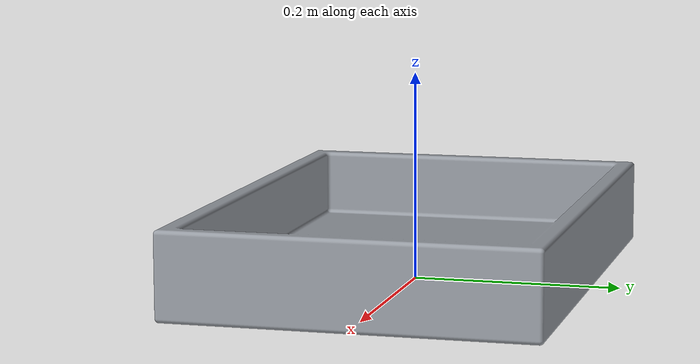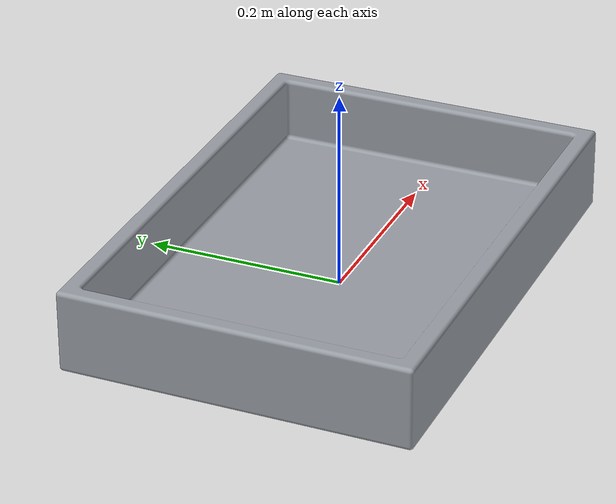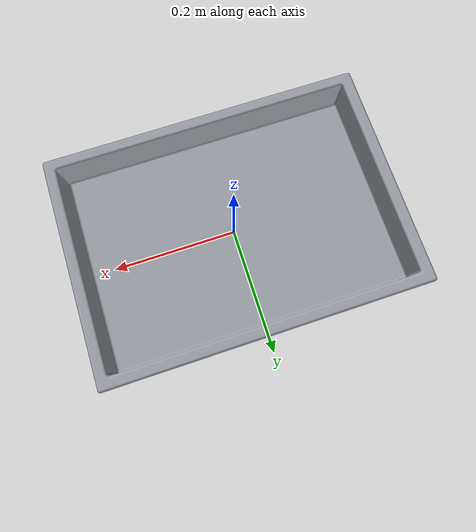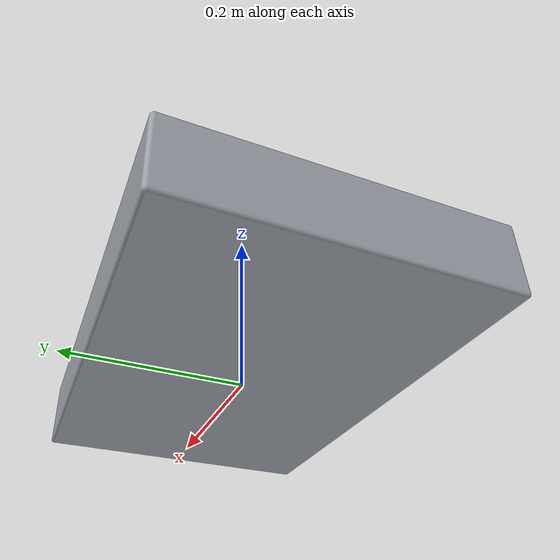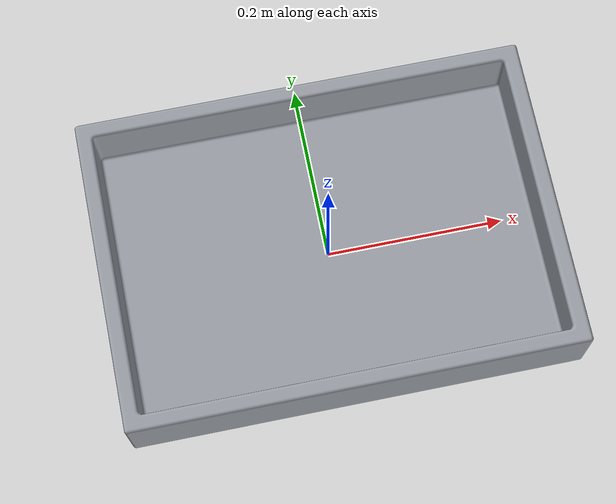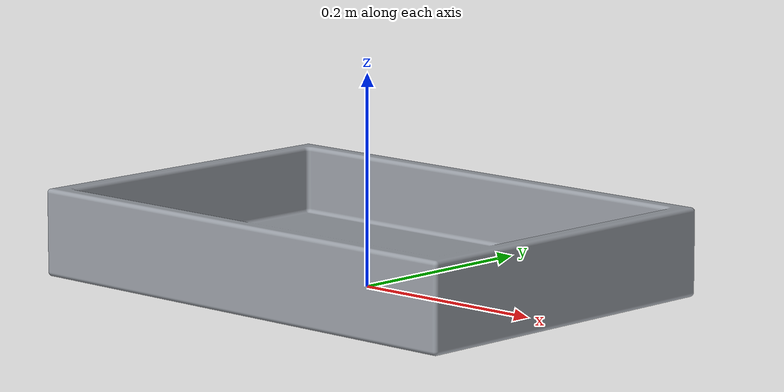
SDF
<?xml version="1.0"?><sdf version="1.6"><model name="metal_tray"><static>false</static>
<link name="link"><visual name="tray">
  <geometry><mesh><uri>model://metal_tray/meshes/metal_tray.stl</uri></mesh></geometry>
  <material>
  <ambient>0.18 0.19 0.20 1</ambient>
  <diffuse>0.60 0.62 0.65 1</diffuse>
  <specular>1.0 1.0 1.0 1</specular>
</material>
</visual><inertial><mass>0.9</mass><inertia><ixx>0.01308</ixx><iyy>0.023768</iyy><izz>0.034688</izz><ixy>0</ixy><ixz>0</ixz><iyz>0</iyz></inertia></inertial><collision name="bottom"><pose>0 0 0.009 0 0 0</pose><geometry><box><size>0.50 0.35 0.018</size></box></geometry></collision></link></model></sdf>
